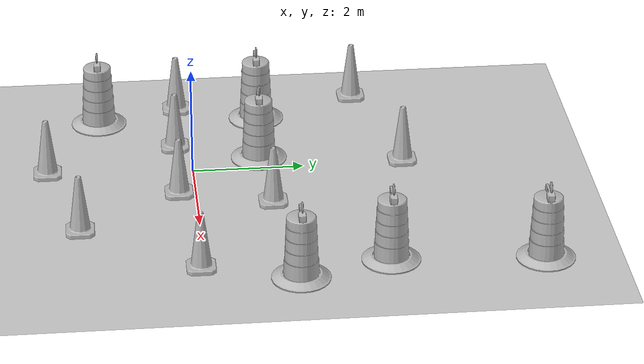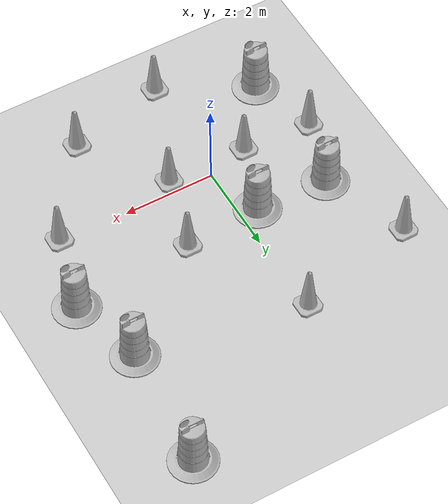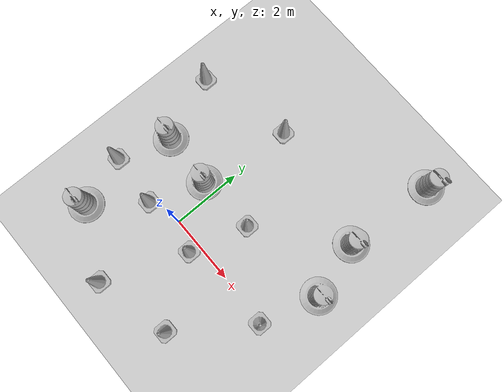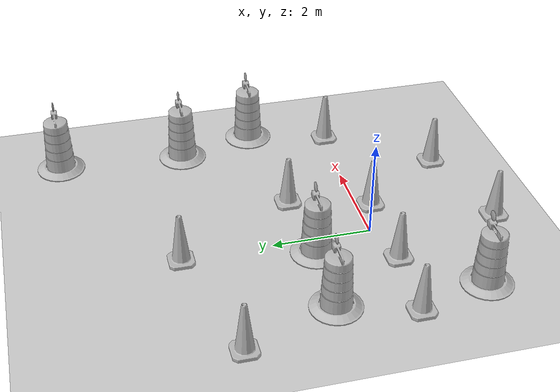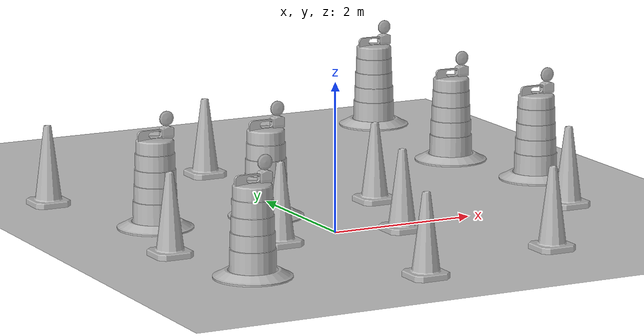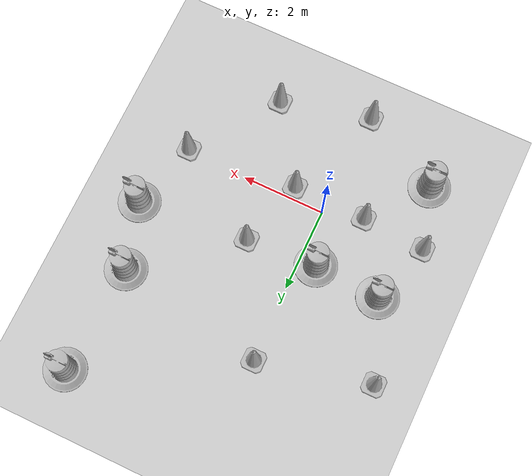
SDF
<sdf version="1.7">
 <world name="default">
  <light name="sun" type="directional">
   <pose>0 0 10 0 -0 0</pose>
   <diffuse>0.8 0.8 0.8 1</diffuse>
   <specular>0.2 0.2 0.2 1</specular>
   <attenuation>
    <range>1000</range>
    <constant>0.9</constant>
    <linear>0.01</linear>
    <quadratic>0.001</quadratic>
   </attenuation>
   <direction>-0.5 0.1 -0.9</direction>
   <spot><inner_angle>0</inner_angle><outer_angle>0</outer_angle><falloff>0</falloff></spot>
  </light>
  <model name="ground_plane">
   <static>1</static>
   <link name="link">
    <collision name="collision">
     <geometry><plane><normal>0 0 1</normal><size>100 100</size></plane></geometry>
     <surface><friction><ode><mu>100</mu><mu2>50</mu2></ode></friction></surface>
    </collision>
    <visual name="visual">
     <cast_shadows>0</cast_shadows>
     <geometry><plane><normal>0 0 1</normal><size>100 100</size></plane></geometry>
     <material>
      <script><uri>file://media/materials/scripts/gazebo.material</uri><name>Gazebo/Grey</name></script>
     </material>
    </visual>
   </link>
  </model>
  <gravity>0 0 -9.8</gravity>
  <magnetic_field>6e-06 2.3e-05 -4.2e-05</magnetic_field>
  <atmosphere type="adiabatic"/>
  <physics type="ode">
   <max_step_size>0.001</max_step_size>
   <real_time_factor>1</real_time_factor>
   <real_time_update_rate>1000</real_time_update_rate>
  </physics>
  <scene><ambient>0.4 0.4 0.4 1</ambient><background>0.7 0.7 0.7 1</background><shadows>1</shadows></scene>
  <audio><device>default</device></audio>
  <spherical_coordinates>
   <surface_model>EARTH_WGS84</surface_model>
   <latitude_deg>0</latitude_deg>
   <longitude_deg>0</longitude_deg>
   <elevation>0</elevation>
   <heading_deg>0</heading_deg>
  </spherical_coordinates>
  <model name="Construction Barrel">
   <link name="link">
    <inertial>
     <pose>0 0 0.4 0 -0 0</pose>
     <mass>500</mass>
     <inertia><ixx>51.2096</ixx><iyy>51.2096</iyy><izz>25</izz><ixy>0</ixy><ixz>0</ixz><iyz>0</iyz></inertia>
    </inertial>
    <collision name="collision">
     <geometry><mesh><uri>model://construction_barrel/meshes/construction_barrel.dae</uri></mesh></geometry>
    </collision>
    <visual name="visual">
     <geometry><mesh><uri>model://construction_barrel/meshes/construction_barrel.dae</uri></mesh></geometry>
    </visual>
   </link>
   <pose>-2.01413 -1.63311 -2e-06 7e-06 -4e-06 -2.5e-05</pose>
  </model>
  <model name="Construction Barrel_0">
   <link name="link">
    <inertial>
     <pose>0 0 0.4 0 -0 0</pose>
     <mass>500</mass>
     <inertia><ixx>51.2096</ixx><iyy>51.2096</iyy><izz>25</izz><ixy>0</ixy><ixz>0</ixz><iyz>0</iyz></inertia>
    </inertial>
    <collision name="collision">
     <geometry><mesh><uri>model://construction_barrel/meshes/construction_barrel.dae</uri></mesh></geometry>
    </collision>
    <visual name="visual">
     <geometry><mesh><uri>model://construction_barrel/meshes/construction_barrel.dae</uri></mesh></geometry>
    </visual>
   </link>
   <pose>-1.97795 1.31033 -2e-06 7e-06 -4e-06 -2.4e-05</pose>
  </model>
  <model name="Construction Cone">
   <link name="link">
    <collision name="collision">
     <geometry>
      <mesh><scale>10 10 10</scale><uri>model://construction_cone/meshes/construction_cone.dae</uri></mesh>
     </geometry>
    </collision>
    <visual name="visual">
     <geometry>
      <mesh><scale>10 10 10</scale><uri>model://construction_cone/meshes/construction_cone.dae</uri></mesh>
     </geometry>
    </visual>
    <inertial>
     <inertia><ixx>1</ixx><ixy>0</ixy><ixz>0</ixz><iyy>1</iyy><iyz>0</iyz><izz>1</izz></inertia>
     <mass>1</mass>
    </inertial>
   </link>
   <pose>1.30649 1.34759 0 -0 -0 -0</pose>
  </model>
  <model name="Construction Barrel_1">
   <link name="link">
    <inertial>
     <pose>0 0 0.4 0 -0 0</pose>
     <mass>500</mass>
     <inertia><ixx>51.2096</ixx><iyy>51.2096</iyy><izz>25</izz><ixy>0</ixy><ixz>0</ixz><iyz>0</iyz></inertia>
    </inertial>
    <collision name="collision">
     <geometry><mesh><uri>model://construction_barrel/meshes/construction_barrel.dae</uri></mesh></geometry>
    </collision>
    <visual name="visual">
     <geometry><mesh><uri>model://construction_barrel/meshes/construction_barrel.dae</uri></mesh></geometry>
    </visual>
   </link>
   <pose>3.50831 3.17052 -2e-06 7e-06 -4e-06 -2.1e-05</pose>
  </model>
  <model name="Construction Cone_0">
   <link name="link">
    <collision name="collision">
     <geometry>
      <mesh><scale>10 10 10</scale><uri>model://construction_cone/meshes/construction_cone.dae</uri></mesh>
     </geometry>
    </collision>
    <visual name="visual">
     <geometry>
      <mesh><scale>10 10 10</scale><uri>model://construction_cone/meshes/construction_cone.dae</uri></mesh>
     </geometry>
    </visual>
    <inertial>
     <inertia><ixx>1</ixx><ixy>0</ixy><ixz>0</ixz><iyy>1</iyy><iyz>0</iyz><izz>1</izz></inertia>
     <mass>1</mass>
    </inertial>
   </link>
   <pose>-0.042115 3.82481 -0 0 -0 0</pose>
  </model>
  <model name="Construction Cone_1">
   <link name="link">
    <collision name="collision">
     <geometry>
      <mesh><scale>10 10 10</scale><uri>model://construction_cone/meshes/construction_cone.dae</uri></mesh>
     </geometry>
    </collision>
    <visual name="visual">
     <geometry>
      <mesh><scale>10 10 10</scale><uri>model://construction_cone/meshes/construction_cone.dae</uri></mesh>
     </geometry>
    </visual>
    <inertial>
     <inertia><ixx>1</ixx><ixy>0</ixy><ixz>0</ixz><iyy>1</iyy><iyz>0</iyz><izz>1</izz></inertia>
     <mass>1</mass>
    </inertial>
   </link>
   <pose>3.49191 -0.073329 -0 0 -1e-06 0</pose>
  </model>
  <model name="Construction Cone_2">
   <link name="link">
    <collision name="collision">
     <geometry>
      <mesh><scale>10 10 10</scale><uri>model://construction_cone/meshes/construction_cone.dae</uri></mesh>
     </geometry>
    </collision>
    <visual name="visual">
     <geometry>
      <mesh><scale>10 10 10</scale><uri>model://construction_cone/meshes/construction_cone.dae</uri></mesh>
     </geometry>
    </visual>
    <inertial>
     <inertia><ixx>1</ixx><ixy>0</ixy><ixz>0</ixz><iyy>1</iyy><iyz>0</iyz><izz>1</izz></inertia>
     <mass>1</mass>
    </inertial>
   </link>
   <pose>2.0451 -2.08514 -0 0 -1e-06 0</pose>
  </model>
  <model name="Construction Barrel_2">
   <link name="link">
    <inertial>
     <pose>0 0 0.4 0 -0 0</pose>
     <mass>500</mass>
     <inertia><ixx>51.2096</ixx><iyy>51.2096</iyy><izz>25</izz><ixy>0</ixy><ixz>0</ixz><iyz>0</iyz></inertia>
    </inertial>
    <collision name="collision">
     <geometry><mesh><uri>model://construction_barrel/meshes/construction_barrel.dae</uri></mesh></geometry>
    </collision>
    <visual name="visual">
     <geometry><mesh><uri>model://construction_barrel/meshes/construction_barrel.dae</uri></mesh></geometry>
    </visual>
   </link>
   <pose>3.68441 5.8106 -1e-06 -8e-06 -2e-06 -1.5e-05</pose>
  </model>
  <model name="Construction Cone_3">
   <link name="link">
    <collision name="collision">
     <geometry>
      <mesh><scale>10 10 10</scale><uri>model://construction_cone/meshes/construction_cone.dae</uri></mesh>
     </geometry>
    </collision>
    <visual name="visual">
     <geometry>
      <mesh><scale>10 10 10</scale><uri>model://construction_cone/meshes/construction_cone.dae</uri></mesh>
     </geometry>
    </visual>
    <inertial>
     <inertia><ixx>1</ixx><ixy>0</ixy><ixz>0</ixz><iyy>1</iyy><iyz>0</iyz><izz>1</izz></inertia>
     <mass>1</mass>
    </inertial>
   </link>
   <pose>-0.099492 -2.61932 -0 0 -1e-06 0</pose>
  </model>
  <model name="Construction Cone_4">
   <link name="link">
    <collision name="collision">
     <geometry>
      <mesh><scale>10 10 10</scale><uri>model://construction_cone/meshes/construction_cone.dae</uri></mesh>
     </geometry>
    </collision>
    <visual name="visual">
     <geometry>
      <mesh><scale>10 10 10</scale><uri>model://construction_cone/meshes/construction_cone.dae</uri></mesh>
     </geometry>
    </visual>
    <inertial>
     <inertia><ixx>1</ixx><ixy>0</ixy><ixz>0</ixz><iyy>1</iyy><iyz>0</iyz><izz>1</izz></inertia>
     <mass>1</mass>
    </inertial>
   </link>
   <pose>-2.69476 3.17981 -1e-05 -1e-06 0 0</pose>
  </model>
  <model name="Construction Cone_5">
   <link name="link">
    <collision name="collision">
     <geometry>
      <mesh><scale>10 10 10</scale><uri>model://construction_cone/meshes/construction_cone.dae</uri></mesh>
     </geometry>
    </collision>
    <visual name="visual">
     <geometry>
      <mesh><scale>10 10 10</scale><uri>model://construction_cone/meshes/construction_cone.dae</uri></mesh>
     </geometry>
    </visual>
    <inertial>
     <inertia><ixx>1</ixx><ixy>0</ixy><ixz>0</ixz><iyy>1</iyy><iyz>0</iyz><izz>1</izz></inertia>
     <mass>1</mass>
    </inertial>
   </link>
   <pose>-0.937364 -0.269179 0 -0 -0 -0</pose>
  </model>
  <model name="Construction Cone_6">
   <link name="link">
    <collision name="collision">
     <geometry>
      <mesh><scale>10 10 10</scale><uri>model://construction_cone/meshes/construction_cone.dae</uri></mesh>
     </geometry>
    </collision>
    <visual name="visual">
     <geometry>
      <mesh><scale>10 10 10</scale><uri>model://construction_cone/meshes/construction_cone.dae</uri></mesh>
     </geometry>
    </visual>
    <inertial>
     <inertia><ixx>1</ixx><ixy>0</ixy><ixz>0</ixz><iyy>1</iyy><iyz>0</iyz><izz>1</izz></inertia>
     <mass>1</mass>
    </inertial>
   </link>
   <pose>0.830174 -0.295143 -0 0 -1e-06 0</pose>
  </model>
  <model name="Construction Barrel_3">
   <link name="link">
    <inertial>
     <pose>0 0 0.4 0 -0 0</pose>
     <mass>500</mass>
     <inertia><ixx>51.2096</ixx><iyy>51.2096</iyy><izz>25</izz><ixy>0</ixy><ixz>0</ixz><iyz>0</iyz></inertia>
    </inertial>
    <collision name="collision">
     <geometry><mesh><uri>model://construction_barrel/meshes/construction_barrel.dae</uri></mesh></geometry>
    </collision>
    <visual name="visual">
     <geometry><mesh><uri>model://construction_barrel/meshes/construction_barrel.dae</uri></mesh></geometry>
    </visual>
   </link>
   <pose>-0.394966 1.23158 -1e-06 0 4e-06 -8e-06</pose>
  </model>
  <model name="Construction Cone_7">
   <link name="link">
    <collision name="collision">
     <geometry>
      <mesh><scale>10 10 10</scale><uri>model://construction_cone/meshes/construction_cone.dae</uri></mesh>
     </geometry>
    </collision>
    <visual name="visual">
     <geometry>
      <mesh><scale>10 10 10</scale><uri>model://construction_cone/meshes/construction_cone.dae</uri></mesh>
     </geometry>
    </visual>
    <inertial>
     <inertia><ixx>1</ixx><ixy>0</ixy><ixz>0</ixz><iyy>1</iyy><iyz>0</iyz><izz>1</izz></inertia>
     <mass>1</mass>
    </inertial>
   </link>
   <pose>-2.45838 -0.162937 -1e-05 -1e-06 0 0</pose>
  </model>
  <model name="Construction Barrel_4">
   <link name="link">
    <inertial>
     <pose>0 0 0.4 0 -0 0</pose>
     <mass>500</mass>
     <inertia><ixx>51.2096</ixx><iyy>51.2096</iyy><izz>25</izz><ixy>0</ixy><ixz>0</ixz><iyz>0</iyz></inertia>
    </inertial>
    <collision name="collision">
     <geometry><mesh><uri>model://construction_barrel/meshes/construction_barrel.dae</uri></mesh></geometry>
    </collision>
    <visual name="visual">
     <geometry><mesh><uri>model://construction_barrel/meshes/construction_barrel.dae</uri></mesh></geometry>
    </visual>
   </link>
   <pose>3.9655 1.5851 -4e-06 -5e-06 -7e-06 -4e-06</pose>
  </model>
 </world>
</sdf>
